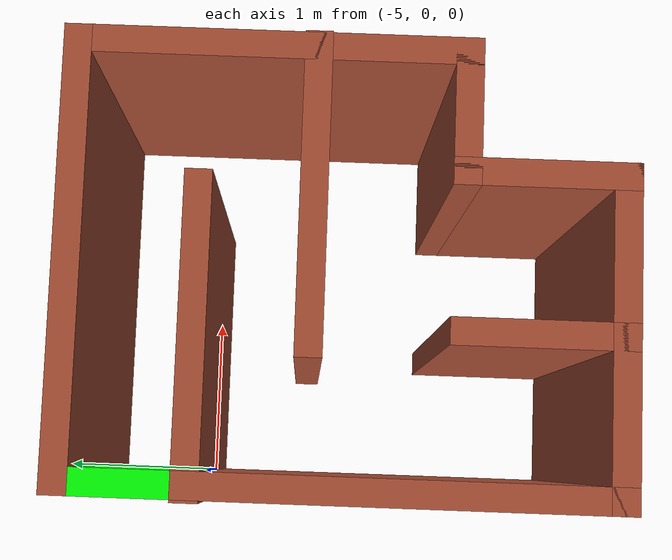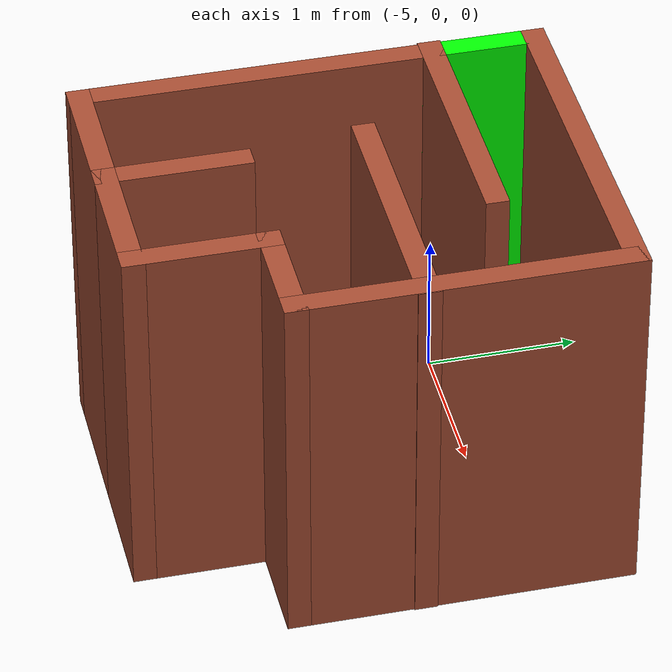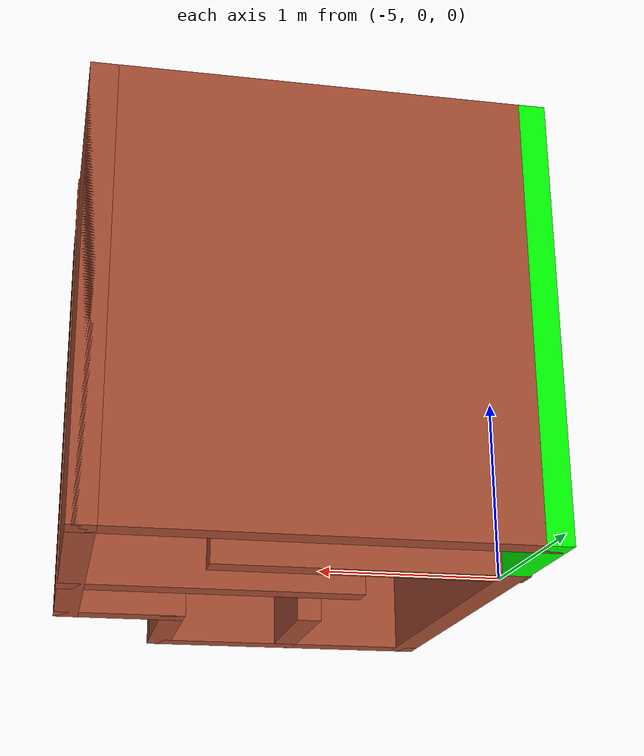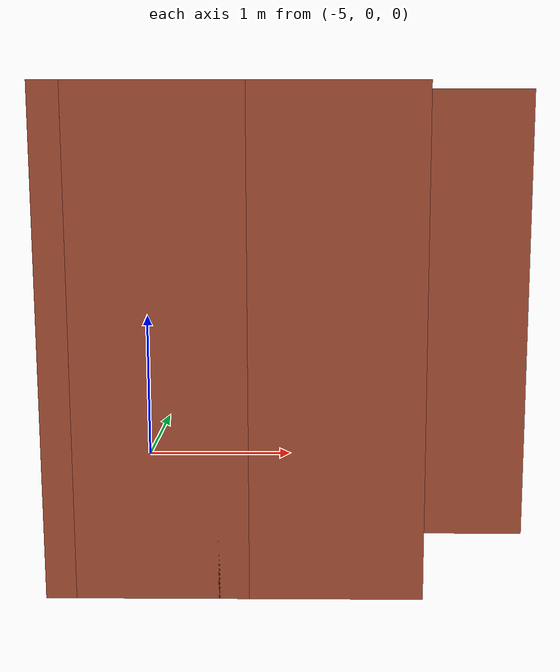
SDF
<?xml version='1.0'?>
<sdf version='1.7'>
  <model name='Closed-Maze'>
    <pose>-2.57897 -0.788256 0 0 -0 0</pose>
    <link name='Wall_0'>
      <collision name='Wall_0_Collision'>
        <geometry>
          <box>
            <size>1 0.15 2.5</size>
          </box>
        </geometry>
        <pose>0 0 1.25 0 -0 0</pose>
      </collision>
      <visual name='Wall_0_Visual'>
        <pose>0 0 1.25 0 -0 0</pose>
        <geometry>
          <box>
            <size>1 0.15 2.5</size>
          </box>
        </geometry>
        <material>
          <script>
            <uri>file://media/materials/scripts/gazebo.material</uri>
            <name>Gazebo/Bricks</name>
          </script>
          <ambient>1 1 1 1</ambient>
        </material>
        <meta>
          <layer>0</layer>
        </meta>
      </visual>
      <pose>-0.788679 -1.05003 0 0 -0 -1.5708</pose>
    </link>
    <link name='Wall_1'>
      <collision name='Wall_1_Collision'>
        <geometry>
          <box>
            <size>1 0.15 2.5</size>
          </box>
        </geometry>
        <pose>0 0 1.25 0 -0 0</pose>
      </collision>
      <visual name='Wall_1_Visual'>
        <pose>0 0 1.25 0 -0 0</pose>
        <geometry>
          <box>
            <size>1 0.15 2.5</size>
          </box>
        </geometry>
        <material>
          <script>
            <uri>file://media/materials/scripts/gazebo.material</uri>
            <name>Gazebo/Bricks</name>
          </script>
          <ambient>1 1 1 1</ambient>
        </material>
        <meta>
          <layer>0</layer>
        </meta>
      </visual>
      <pose>-1.21368 -1.47503 0 0 -0 3.14159</pose>
    </link>
    <link name='Wall_10'>
      <collision name='Wall_10_Collision'>
        <geometry>
          <box>
            <size>2.5 0.15 2.5</size>
          </box>
        </geometry>
        <pose>0 0 1.25 0 -0 0</pose>
      </collision>
      <visual name='Wall_10_Visual'>
        <pose>0 0 1.25 0 -0 0</pose>
        <geometry>
          <box>
            <size>2.5 0.15 2.5</size>
          </box>
        </geometry>
        <material>
          <script>
            <uri>file://media/materials/scripts/gazebo.material</uri>
            <name>Gazebo/Bricks</name>
          </script>
          <ambient>1 1 1 1</ambient>
        </material>
        <meta>
          <layer>0</layer>
        </meta>
      </visual>
      <pose>-1.31368 1.47497 0 0 -0 0</pose>
    </link>
    <link name='Wall_11'>
      <collision name='Wall_11_Collision'>
        <geometry>
          <box>
            <size>2.25 0.15 2.5</size>
          </box>
        </geometry>
        <pose>0 0 1.25 0 -0 0</pose>
      </collision>
      <visual name='Wall_11_Visual'>
        <pose>0 0 1.25 0 -0 0</pose>
        <geometry>
          <box>
            <size>2.25 0.15 2.5</size>
          </box>
        </geometry>
        <material>
          <script>
            <uri>file://media/materials/scripts/gazebo.material</uri>
            <name>Gazebo/Bricks</name>
          </script>
          <ambient>1 1 1 1</ambient>
        </material>
        <meta>
          <layer>0</layer>
        </meta>
      </visual>
      <pose>-0.13868 0.42497 0 0 -0 -1.5708</pose>
    </link>
    <link name='Wall_12'>
      <collision name='Wall_12_Collision'>
        <geometry>
          <box>
            <size>0.8 0.15 2.5</size>
          </box>
        </geometry>
        <pose>0 0 1.25 0 -0 0</pose>
      </collision>
      <visual name='Wall_12_Visual'>
        <pose>0 0 1.25 0 -0 0</pose>
        <geometry>
          <box>
            <size>0.8 0.15 2.5</size>
          </box>
        </geometry>
        <material>
          <script>
            <uri>file://media/materials/scripts/gazebo.material</uri>
            <name>Gazebo/Bricks</name>
          </script>
          <ambient>1 1 1 1</ambient>
        </material>
        <meta>
          <layer>0</layer>
        </meta>
      </visual>
      <pose>-0.46368 -0.62503 0 0 -0 3.14159</pose>
    </link>
    <link name='Wall_14'>
      <collision name='Wall_14_Collision'>
        <geometry>
          <box>
            <size>1.75 0.15 2.5</size>
          </box>
        </geometry>
        <pose>0 0 1.25 0 -0 0</pose>
      </collision>
      <visual name='Wall_14_Visual'>
        <pose>0 0 1.25 0 -0 0</pose>
        <geometry>
          <box>
            <size>1.75 0.15 2.5</size>
          </box>
        </geometry>
        <material>
          <script>
            <uri>file://media/materials/scripts/gazebo.material</uri>
            <name>Gazebo/Bricks</name>
          </script>
          <ambient>1 1 1 1</ambient>
        </material>
        <meta>
          <layer>0</layer>
        </meta>
      </visual>
      <pose>-0.93099 0.185611 0 0 -0 3.14159</pose>
    </link>
    <link name='Wall_2'>
      <collision name='Wall_2_Collision'>
        <geometry>
          <box>
            <size>1 0.15 2.5</size>
          </box>
        </geometry>
        <pose>0 0 1.25 0 -0 0</pose>
      </collision>
      <visual name='Wall_2_Visual'>
        <pose>0 0 1.25 0 -0 0</pose>
        <geometry>
          <box>
            <size>1 0.15 2.5</size>
          </box>
        </geometry>
        <material>
          <script>
            <uri>file://media/materials/scripts/gazebo.material</uri>
            <name>Gazebo/Bricks</name>
          </script>
          <ambient>1 1 1 1</ambient>
        </material>
        <meta>
          <layer>0</layer>
        </meta>
      </visual>
      <pose>-1.63868 -1.05003 0 0 -0 1.5708</pose>
    </link>
    <link name='Wall_4'>
      <collision name='Wall_4_Collision'>
        <geometry>
          <box>
            <size>1 0.15 2.5</size>
          </box>
        </geometry>
        <pose>0 0 1.25 0 -0 0</pose>
      </collision>
      <visual name='Wall_4_Visual'>
        <pose>0 0 1.25 0 -0 0</pose>
        <geometry>
          <box>
            <size>1 0.15 2.5</size>
          </box>
        </geometry>
        <material>
          <script>
            <uri>file://media/materials/scripts/gazebo.material</uri>
            <name>Gazebo/Bricks</name>
          </script>
          <ambient>1 1 1 1</ambient>
        </material>
        <meta>
          <layer>0</layer>
        </meta>
      </visual>
      <pose>-2.06368 -1.47503 0 0 -0 3.14159</pose>
    </link>
    <link name='Wall_5'>
      <collision name='Wall_5_Collision'>
        <geometry>
          <box>
            <size>2.42358 0.15 2.5</size>
          </box>
        </geometry>
        <pose>0 0 1.25 0 -0 0</pose>
      </collision>
      <visual name='Wall_5_Visual'>
        <pose>0 0 1.25 0 -0 0</pose>
        <geometry>
          <box>
            <size>2.42358 0.15 2.5</size>
          </box>
        </geometry>
        <material>
          <script>
            <uri>file://media/materials/scripts/gazebo.material</uri>
            <name>Gazebo/Bricks</name>
          </script>
          <ambient>1 1 1 1</ambient>
        </material>
        <meta>
          <layer>0</layer>
        </meta>
      </visual>
      <pose>-2.48868 -0.338268 0 0 -0 1.5708</pose>
    </link>
    <link name='Wall_6'>
      <collision name='Wall_6_Collision'>
        <geometry>
          <box>
            <size>1.75 0.15 2.5</size>
          </box>
        </geometry>
        <pose>0 0 1.25 0 -0 0</pose>
      </collision>
      <visual name='Wall_6_Visual'>
        <pose>0 0 1.25 0 -0 0</pose>
        <geometry>
          <box>
            <size>1.75 0.15 2.5</size>
          </box>
        </geometry>
        <material>
          <script>
            <uri>file://media/materials/scripts/gazebo.material</uri>
            <name>Gazebo/Bricks</name>
          </script>
          <ambient>1 1 1 1</ambient>
        </material>
        <meta>
          <layer>0</layer>
        </meta>
      </visual>
      <pose>-1.70398 0.798494 0 0 -0 0</pose>
    </link>
    <link name='Wall_9'>
      <collision name='Wall_9_Collision'>
        <geometry>
          <box>
            <size>0.826648 0.15 2.5</size>
          </box>
        </geometry>
        <pose>0 0 1.25 0 -0 0</pose>
      </collision>
      <visual name='Wall_9_Visual'>
        <pose>0 0 1.25 0 -0 0</pose>
        <geometry>
          <box>
            <size>0.826648 0.15 2.5</size>
          </box>
        </geometry>
    <material>
      <ambient>0 1 0 1</ambient>   <!-- Fully green ambient color -->
      <diffuse>0 1 0 1</diffuse>   <!-- Fully green diffuse color -->
    </material>
        <meta>
          <layer>0</layer>
        </meta>
      </visual>
      <pose>-2.48868 1.13673 0 0 -0 1.5708</pose>
    </link>
    <static>1</static>
  </model>
</sdf>
